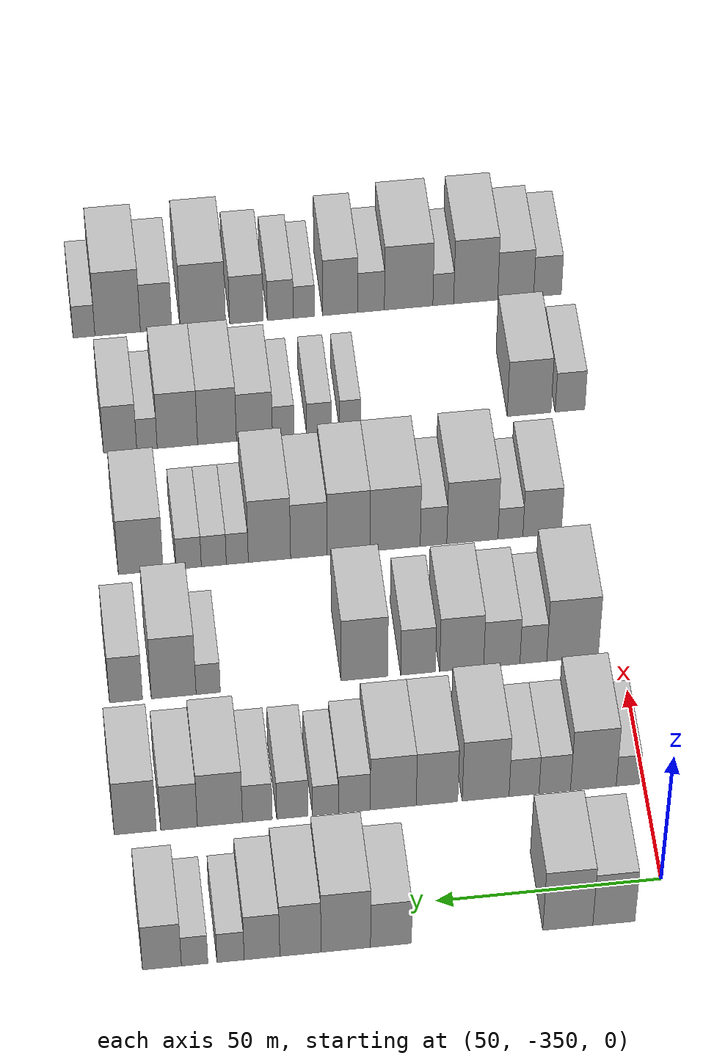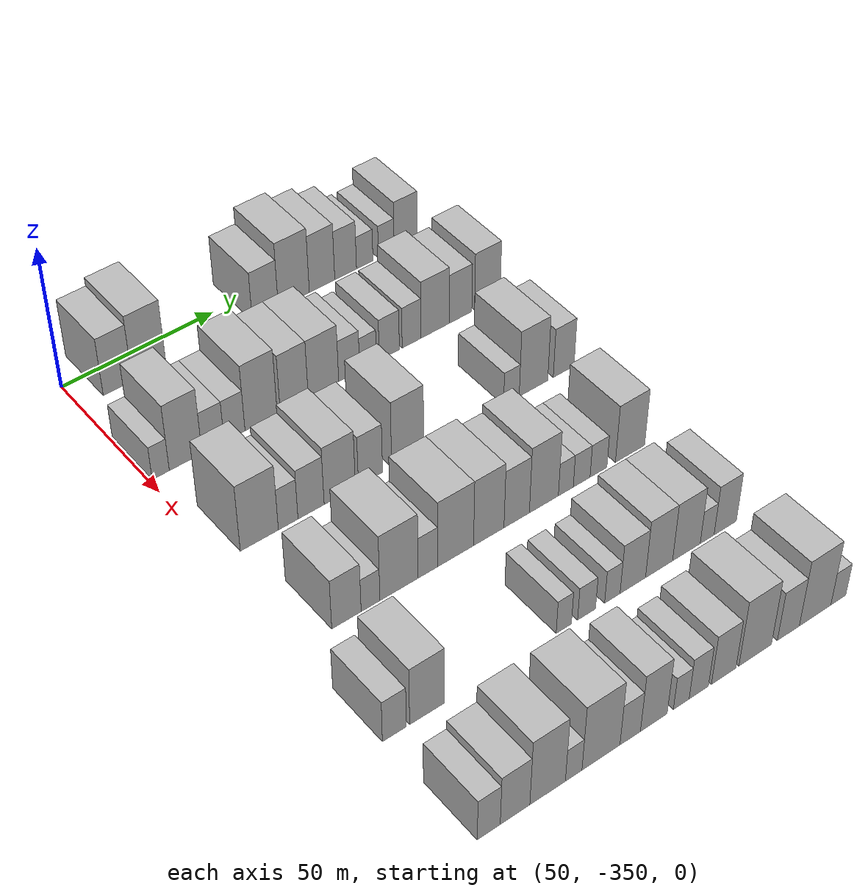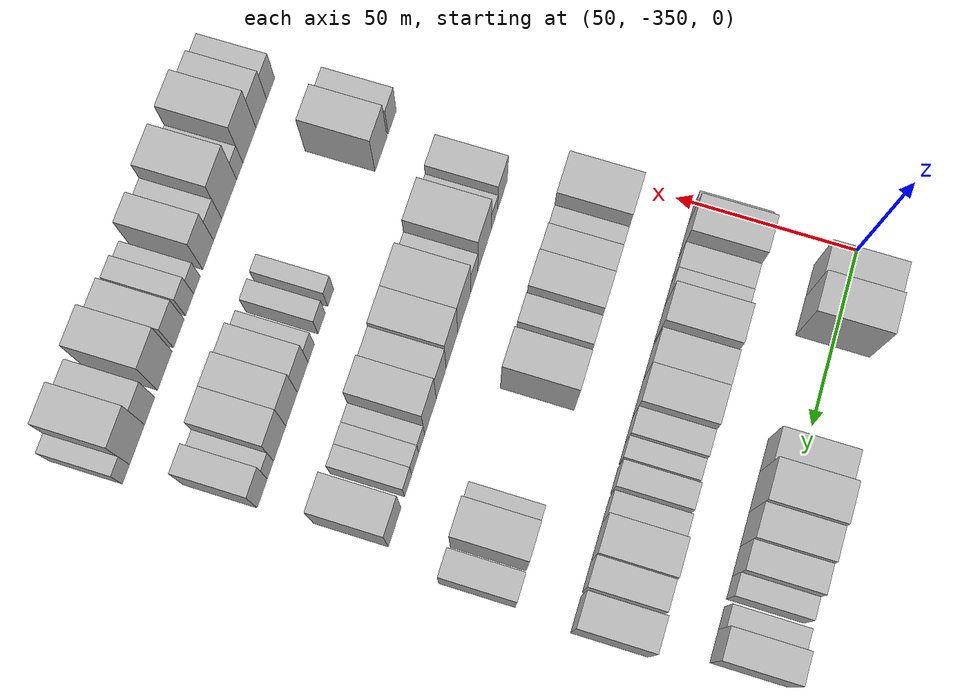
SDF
<sdf version="1.6">
 <world name="default">
  <model name="building_26">
   <static>1</static>
   <pose>50.0000 -337.9815 0 0.000000 0.000000 0.000000</pose>
   <link name="link">
    <pose>0 0 10.50 0 0 0</pose>
    <collision name="collision"><geometry><box><size>20.0000 9.3217 21.0000</size></box></geometry></collision>
    <visual name="visual">
     <cast_shadows>0</cast_shadows>
     <geometry><box><size>20.0000 9.3217 21.0000</size></box></geometry>
     <material>
      <script>
       <uri>model://HANNAS_wall/materials/scripts</uri>
       <uri>model://HANNAS_wall/materials/textures</uri>
       <name>vrc/HANNAS_wall</name>
      </script>
     </material>
    </visual>
   </link>
  </model>
  <model name="building_27">
   <static>1</static>
   <pose>50.0000 -327.7994 0 0.000000 0.000000 0.000000</pose>
   <link name="link">
    <pose>0 0 12.00 0 0 0</pose>
    <collision name="collision"><geometry><box><size>20.0000 11.0424 24.0000</size></box></geometry></collision>
    <visual name="visual">
     <cast_shadows>0</cast_shadows>
     <geometry><box><size>20.0000 11.0424 24.0000</size></box></geometry>
     <material>
      <script>
       <uri>model://HANNAS_wall/materials/scripts</uri>
       <uri>model://HANNAS_wall/materials/textures</uri>
       <name>vrc/HANNAS_wall</name>
      </script>
     </material>
    </visual>
   </link>
  </model>
  <model name="building_28">
   <static>1</static>
   <pose>50.0000 -288.8033 0 0.000000 0.000000 0.000000</pose>
   <link name="link">
    <pose>0 0 9.00 0 0 0</pose>
    <collision name="collision"><geometry><box><size>20.0000 8.9833 18.0000</size></box></geometry></collision>
    <visual name="visual">
     <cast_shadows>0</cast_shadows>
     <geometry><box><size>20.0000 8.9833 18.0000</size></box></geometry>
     <material>
      <script>
       <uri>model://HANNAS_wall/materials/scripts</uri>
       <uri>model://HANNAS_wall/materials/textures</uri>
       <name>vrc/HANNAS_wall</name>
      </script>
     </material>
    </visual>
   </link>
  </model>
  <model name="building_29">
   <static>1</static>
   <pose>50.0000 -278.8812 0 0.000000 0.000000 0.000000</pose>
   <link name="link">
    <pose>0 0 12.00 0 0 0</pose>
    <collision name="collision"><geometry><box><size>20.0000 10.8609 24.0000</size></box></geometry></collision>
    <visual name="visual">
     <cast_shadows>0</cast_shadows>
     <geometry><box><size>20.0000 10.8609 24.0000</size></box></geometry>
     <material>
      <script>
       <uri>model://HANNAS_wall/materials/scripts</uri>
       <uri>model://HANNAS_wall/materials/textures</uri>
       <name>vrc/HANNAS_wall</name>
      </script>
     </material>
    </visual>
   </link>
  </model>
  <model name="building_30">
   <static>1</static>
   <pose>50.0000 -268.9282 0 0.000000 0.000000 0.000000</pose>
   <link name="link">
    <pose>0 0 10.50 0 0 0</pose>
    <collision name="collision"><geometry><box><size>20.0000 9.0451 21.0000</size></box></geometry></collision>
    <visual name="visual">
     <cast_shadows>0</cast_shadows>
     <geometry><box><size>20.0000 9.0451 21.0000</size></box></geometry>
     <material>
      <script>
       <uri>model://HANNAS_wall/materials/scripts</uri>
       <uri>model://HANNAS_wall/materials/textures</uri>
       <name>vrc/HANNAS_wall</name>
      </script>
     </material>
    </visual>
   </link>
  </model>
  <model name="building_31">
   <static>1</static>
   <pose>50.0000 -260.5038 0 0.000000 0.000000 0.000000</pose>
   <link name="link">
    <pose>0 0 9.00 0 0 0</pose>
    <collision name="collision"><geometry><box><size>20.0000 7.8036 18.0000</size></box></geometry></collision>
    <visual name="visual">
     <cast_shadows>0</cast_shadows>
     <geometry><box><size>20.0000 7.8036 18.0000</size></box></geometry>
     <material>
      <script>
       <uri>model://HANNAS_wall/materials/scripts</uri>
       <uri>model://HANNAS_wall/materials/textures</uri>
       <name>vrc/HANNAS_wall</name>
      </script>
     </material>
    </visual>
   </link>
  </model>
  <model name="building_32">
   <static>1</static>
   <pose>50.0000 -253.6218 0 0.000000 0.000000 0.000000</pose>
   <link name="link">
    <pose>0 0 6.00 0 0 0</pose>
    <collision name="collision"><geometry><box><size>20.0000 5.9604 12.0000</size></box></geometry></collision>
    <visual name="visual">
     <cast_shadows>0</cast_shadows>
     <geometry><box><size>20.0000 5.9604 12.0000</size></box></geometry>
     <material>
      <script>
       <uri>model://HANNAS_wall/materials/scripts</uri>
       <uri>model://HANNAS_wall/materials/textures</uri>
       <name>vrc/HANNAS_wall</name>
      </script>
     </material>
    </visual>
   </link>
  </model>
  <model name="building_33">
   <static>1</static>
   <pose>50.0000 -245.7485 0 0.000000 0.000000 0.000000</pose>
   <link name="link">
    <pose>0 0 6.00 0 0 0</pose>
    <collision name="collision"><geometry><box><size>20.0000 5.7862 12.0000</size></box></geometry></collision>
    <visual name="visual">
     <cast_shadows>0</cast_shadows>
     <geometry><box><size>20.0000 5.7862 12.0000</size></box></geometry>
     <material>
      <script>
       <uri>model://HANNAS_wall/materials/scripts</uri>
       <uri>model://HANNAS_wall/materials/textures</uri>
       <name>vrc/HANNAS_wall</name>
      </script>
     </material>
    </visual>
   </link>
  </model>
  <model name="building_34">
   <static>1</static>
   <pose>50.0000 -238.6031 0 0.000000 0.000000 0.000000</pose>
   <link name="link">
    <pose>0 0 9.00 0 0 0</pose>
    <collision name="collision"><geometry><box><size>20.0000 8.5045 18.0000</size></box></geometry></collision>
    <visual name="visual">
     <cast_shadows>0</cast_shadows>
     <geometry><box><size>20.0000 8.5045 18.0000</size></box></geometry>
     <material>
      <script>
       <uri>model://HANNAS_wall/materials/scripts</uri>
       <uri>model://HANNAS_wall/materials/textures</uri>
       <name>vrc/HANNAS_wall</name>
      </script>
     </material>
    </visual>
   </link>
  </model>
  <model name="building_146">
   <static>1</static>
   <pose>85.0000 -346.3548 0 0.000000 0.000000 0.000000</pose>
   <link name="link">
    <pose>0 0 6.00 0 0 0</pose>
    <collision name="collision"><geometry><box><size>20.0000 5.3492 12.0000</size></box></geometry></collision>
    <visual name="visual">
     <cast_shadows>0</cast_shadows>
     <geometry><box><size>20.0000 5.3492 12.0000</size></box></geometry>
     <material>
      <script>
       <uri>model://HANNAS_wall/materials/scripts</uri>
       <uri>model://HANNAS_wall/materials/textures</uri>
       <name>vrc/HANNAS_wall</name>
      </script>
     </material>
    </visual>
   </link>
  </model>
  <model name="building_147">
   <static>1</static>
   <pose>85.0000 -338.5195 0 0.000000 0.000000 0.000000</pose>
   <link name="link">
    <pose>0 0 12.00 0 0 0</pose>
    <collision name="collision"><geometry><box><size>20.0000 10.3215 24.0000</size></box></geometry></collision>
    <visual name="visual">
     <cast_shadows>0</cast_shadows>
     <geometry><box><size>20.0000 10.3215 24.0000</size></box></geometry>
     <material>
      <script>
       <uri>model://HANNAS_wall/materials/scripts</uri>
       <uri>model://HANNAS_wall/materials/textures</uri>
       <name>vrc/HANNAS_wall</name>
      </script>
     </material>
    </visual>
   </link>
  </model>
  <model name="building_148">
   <static>1</static>
   <pose>85.0000 -329.8063 0 0.000000 0.000000 0.000000</pose>
   <link name="link">
    <pose>0 0 7.50 0 0 0</pose>
    <collision name="collision"><geometry><box><size>20.0000 7.1049 15.0000</size></box></geometry></collision>
    <visual name="visual">
     <cast_shadows>0</cast_shadows>
     <geometry><box><size>20.0000 7.1049 15.0000</size></box></geometry>
     <material>
      <script>
       <uri>model://HANNAS_wall/materials/scripts</uri>
       <uri>model://HANNAS_wall/materials/textures</uri>
       <name>vrc/HANNAS_wall</name>
      </script>
     </material>
    </visual>
   </link>
  </model>
  <model name="building_149">
   <static>1</static>
   <pose>85.0000 -322.8811 0 0.000000 0.000000 0.000000</pose>
   <link name="link">
    <pose>0 0 7.50 0 0 0</pose>
    <collision name="collision"><geometry><box><size>20.0000 6.7456 15.0000</size></box></geometry></collision>
    <visual name="visual">
     <cast_shadows>0</cast_shadows>
     <geometry><box><size>20.0000 6.7456 15.0000</size></box></geometry>
     <material>
      <script>
       <uri>model://HANNAS_wall/materials/scripts</uri>
       <uri>model://HANNAS_wall/materials/textures</uri>
       <name>vrc/HANNAS_wall</name>
      </script>
     </material>
    </visual>
   </link>
  </model>
  <model name="building_150">
   <static>1</static>
   <pose>85.0000 -314.2367 0 0.000000 0.000000 0.000000</pose>
   <link name="link">
    <pose>0 0 12.00 0 0 0</pose>
    <collision name="collision"><geometry><box><size>20.0000 10.5431 24.0000</size></box></geometry></collision>
    <visual name="visual">
     <cast_shadows>0</cast_shadows>
     <geometry><box><size>20.0000 10.5431 24.0000</size></box></geometry>
     <material>
      <script>
       <uri>model://HANNAS_wall/materials/scripts</uri>
       <uri>model://HANNAS_wall/materials/textures</uri>
       <name>vrc/HANNAS_wall</name>
      </script>
     </material>
    </visual>
   </link>
  </model>
  <model name="building_151">
   <static>1</static>
   <pose>85.0000 -303.3021 0 0.000000 0.000000 0.000000</pose>
   <link name="link">
    <pose>0 0 10.50 0 0 0</pose>
    <collision name="collision"><geometry><box><size>20.0000 9.3261 21.0000</size></box></geometry></collision>
    <visual name="visual">
     <cast_shadows>0</cast_shadows>
     <geometry><box><size>20.0000 9.3261 21.0000</size></box></geometry>
     <material>
      <script>
       <uri>model://HANNAS_wall/materials/scripts</uri>
       <uri>model://HANNAS_wall/materials/textures</uri>
       <name>vrc/HANNAS_wall</name>
      </script>
     </material>
    </visual>
   </link>
  </model>
  <model name="building_152">
   <static>1</static>
   <pose>85.0000 -293.4891 0 0.000000 0.000000 0.000000</pose>
   <link name="link">
    <pose>0 0 10.50 0 0 0</pose>
    <collision name="collision"><geometry><box><size>20.0000 10.2998 21.0000</size></box></geometry></collision>
    <visual name="visual">
     <cast_shadows>0</cast_shadows>
     <geometry><box><size>20.0000 10.2998 21.0000</size></box></geometry>
     <material>
      <script>
       <uri>model://HANNAS_wall/materials/scripts</uri>
       <uri>model://HANNAS_wall/materials/textures</uri>
       <name>vrc/HANNAS_wall</name>
      </script>
     </material>
    </visual>
   </link>
  </model>
  <model name="building_153">
   <static>1</static>
   <pose>85.0000 -284.7638 0 0.000000 0.000000 0.000000</pose>
   <link name="link">
    <pose>0 0 7.50 0 0 0</pose>
    <collision name="collision"><geometry><box><size>20.0000 7.1509 15.0000</size></box></geometry></collision>
    <visual name="visual">
     <cast_shadows>0</cast_shadows>
     <geometry><box><size>20.0000 7.1509 15.0000</size></box></geometry>
     <material>
      <script>
       <uri>model://HANNAS_wall/materials/scripts</uri>
       <uri>model://HANNAS_wall/materials/textures</uri>
       <name>vrc/HANNAS_wall</name>
      </script>
     </material>
    </visual>
   </link>
  </model>
  <model name="building_154">
   <static>1</static>
   <pose>85.0000 -278.2954 0 0.000000 0.000000 0.000000</pose>
   <link name="link">
    <pose>0 0 6.00 0 0 0</pose>
    <collision name="collision"><geometry><box><size>20.0000 5.7859 12.0000</size></box></geometry></collision>
    <visual name="visual">
     <cast_shadows>0</cast_shadows>
     <geometry><box><size>20.0000 5.7859 12.0000</size></box></geometry>
     <material>
      <script>
       <uri>model://HANNAS_wall/materials/scripts</uri>
       <uri>model://HANNAS_wall/materials/textures</uri>
       <name>vrc/HANNAS_wall</name>
      </script>
     </material>
    </visual>
   </link>
  </model>
  <model name="building_155">
   <static>1</static>
   <pose>85.0000 -270.8939 0 0.000000 0.000000 0.000000</pose>
   <link name="link">
    <pose>0 0 7.50 0 0 0</pose>
    <collision name="collision"><geometry><box><size>20.0000 7.0171 15.0000</size></box></geometry></collision>
    <visual name="visual">
     <cast_shadows>0</cast_shadows>
     <geometry><box><size>20.0000 7.0171 15.0000</size></box></geometry>
     <material>
      <script>
       <uri>model://HANNAS_wall/materials/scripts</uri>
       <uri>model://HANNAS_wall/materials/textures</uri>
       <name>vrc/HANNAS_wall</name>
      </script>
     </material>
    </visual>
   </link>
  </model>
  <model name="building_156">
   <static>1</static>
   <pose>85.0000 -263.0606 0 0.000000 0.000000 0.000000</pose>
   <link name="link">
    <pose>0 0 7.50 0 0 0</pose>
    <collision name="collision"><geometry><box><size>20.0000 6.6496 15.0000</size></box></geometry></collision>
    <visual name="visual">
     <cast_shadows>0</cast_shadows>
     <geometry><box><size>20.0000 6.6496 15.0000</size></box></geometry>
     <material>
      <script>
       <uri>model://HANNAS_wall/materials/scripts</uri>
       <uri>model://HANNAS_wall/materials/textures</uri>
       <name>vrc/HANNAS_wall</name>
      </script>
     </material>
    </visual>
   </link>
  </model>
  <model name="building_157">
   <static>1</static>
   <pose>85.0000 -254.6994 0 0.000000 0.000000 0.000000</pose>
   <link name="link">
    <pose>0 0 10.50 0 0 0</pose>
    <collision name="collision"><geometry><box><size>20.0000 10.0726 21.0000</size></box></geometry></collision>
    <visual name="visual">
     <cast_shadows>0</cast_shadows>
     <geometry><box><size>20.0000 10.0726 21.0000</size></box></geometry>
     <material>
      <script>
       <uri>model://HANNAS_wall/materials/scripts</uri>
       <uri>model://HANNAS_wall/materials/textures</uri>
       <name>vrc/HANNAS_wall</name>
      </script>
     </material>
    </visual>
   </link>
  </model>
  <model name="building_158">
   <static>1</static>
   <pose>85.0000 -245.5696 0 0.000000 0.000000 0.000000</pose>
   <link name="link">
    <pose>0 0 9.00 0 0 0</pose>
    <collision name="collision"><geometry><box><size>20.0000 8.1870 18.0000</size></box></geometry></collision>
    <visual name="visual">
     <cast_shadows>0</cast_shadows>
     <geometry><box><size>20.0000 8.1870 18.0000</size></box></geometry>
     <material>
      <script>
       <uri>model://HANNAS_wall/materials/scripts</uri>
       <uri>model://HANNAS_wall/materials/textures</uri>
       <name>vrc/HANNAS_wall</name>
      </script>
     </material>
    </visual>
   </link>
  </model>
  <model name="building_159">
   <static>1</static>
   <pose>85.0000 -235.7897 0 0.000000 0.000000 0.000000</pose>
   <link name="link">
    <pose>0 0 10.50 0 0 0</pose>
    <collision name="collision"><geometry><box><size>20.0000 9.3730 21.0000</size></box></geometry></collision>
    <visual name="visual">
     <cast_shadows>0</cast_shadows>
     <geometry><box><size>20.0000 9.3730 21.0000</size></box></geometry>
     <material>
      <script>
       <uri>model://HANNAS_wall/materials/scripts</uri>
       <uri>model://HANNAS_wall/materials/textures</uri>
       <name>vrc/HANNAS_wall</name>
      </script>
     </material>
    </visual>
   </link>
  </model>
  <model name="building_274">
   <static>1</static>
   <pose>120.0000 -338.7851 0 0.000000 0.000000 0.000000</pose>
   <link name="link">
    <pose>0 0 12.00 0 0 0</pose>
    <collision name="collision"><geometry><box><size>20.0000 11.8301 24.0000</size></box></geometry></collision>
    <visual name="visual">
     <cast_shadows>0</cast_shadows>
     <geometry><box><size>20.0000 11.8301 24.0000</size></box></geometry>
     <material>
      <script>
       <uri>model://HANNAS_wall/materials/scripts</uri>
       <uri>model://HANNAS_wall/materials/textures</uri>
       <name>vrc/HANNAS_wall</name>
      </script>
     </material>
    </visual>
   </link>
  </model>
  <model name="building_275">
   <static>1</static>
   <pose>120.0000 -329.7839 0 0.000000 0.000000 0.000000</pose>
   <link name="link">
    <pose>0 0 7.50 0 0 0</pose>
    <collision name="collision"><geometry><box><size>20.0000 6.1723 15.0000</size></box></geometry></collision>
    <visual name="visual">
     <cast_shadows>0</cast_shadows>
     <geometry><box><size>20.0000 6.1723 15.0000</size></box></geometry>
     <material>
      <script>
       <uri>model://HANNAS_wall/materials/scripts</uri>
       <uri>model://HANNAS_wall/materials/textures</uri>
       <name>vrc/HANNAS_wall</name>
      </script>
     </material>
    </visual>
   </link>
  </model>
  <model name="building_276">
   <static>1</static>
   <pose>120.0000 -322.5270 0 0.000000 0.000000 0.000000</pose>
   <link name="link">
    <pose>0 0 9.00 0 0 0</pose>
    <collision name="collision"><geometry><box><size>20.0000 8.3417 18.0000</size></box></geometry></collision>
    <visual name="visual">
     <cast_shadows>0</cast_shadows>
     <geometry><box><size>20.0000 8.3417 18.0000</size></box></geometry>
     <material>
      <script>
       <uri>model://HANNAS_wall/materials/scripts</uri>
       <uri>model://HANNAS_wall/materials/textures</uri>
       <name>vrc/HANNAS_wall</name>
      </script>
     </material>
    </visual>
   </link>
  </model>
  <model name="building_277">
   <static>1</static>
   <pose>120.0000 -313.3157 0 0.000000 0.000000 0.000000</pose>
   <link name="link">
    <pose>0 0 10.50 0 0 0</pose>
    <collision name="collision"><geometry><box><size>20.0000 10.0809 21.0000</size></box></geometry></collision>
    <visual name="visual">
     <cast_shadows>0</cast_shadows>
     <geometry><box><size>20.0000 10.0809 21.0000</size></box></geometry>
     <material>
      <script>
       <uri>model://HANNAS_wall/materials/scripts</uri>
       <uri>model://HANNAS_wall/materials/textures</uri>
       <name>vrc/HANNAS_wall</name>
      </script>
     </material>
    </visual>
   </link>
  </model>
  <model name="building_278">
   <static>1</static>
   <pose>120.0000 -303.3195 0 0.000000 0.000000 0.000000</pose>
   <link name="link">
    <pose>0 0 9.00 0 0 0</pose>
    <collision name="collision"><geometry><box><size>20.0000 7.9114 18.0000</size></box></geometry></collision>
    <visual name="visual">
     <cast_shadows>0</cast_shadows>
     <geometry><box><size>20.0000 7.9114 18.0000</size></box></geometry>
     <material>
      <script>
       <uri>model://HANNAS_wall/materials/scripts</uri>
       <uri>model://HANNAS_wall/materials/textures</uri>
       <name>vrc/HANNAS_wall</name>
      </script>
     </material>
    </visual>
   </link>
  </model>
  <model name="building_279">
   <static>1</static>
   <pose>120.0000 -291.0245 0 0.000000 0.000000 0.000000</pose>
   <link name="link">
    <pose>0 0 12.00 0 0 0</pose>
    <collision name="collision"><geometry><box><size>20.0000 10.6787 24.0000</size></box></geometry></collision>
    <visual name="visual">
     <cast_shadows>0</cast_shadows>
     <geometry><box><size>20.0000 10.6787 24.0000</size></box></geometry>
     <material>
      <script>
       <uri>model://HANNAS_wall/materials/scripts</uri>
       <uri>model://HANNAS_wall/materials/textures</uri>
       <name>vrc/HANNAS_wall</name>
      </script>
     </material>
    </visual>
   </link>
  </model>
  <model name="building_280">
   <static>1</static>
   <pose>120.0000 -255.4131 0 0.000000 0.000000 0.000000</pose>
   <link name="link">
    <pose>0 0 6.00 0 0 0</pose>
    <collision name="collision"><geometry><box><size>20.0000 5.5147 12.0000</size></box></geometry></collision>
    <visual name="visual">
     <cast_shadows>0</cast_shadows>
     <geometry><box><size>20.0000 5.5147 12.0000</size></box></geometry>
     <material>
      <script>
       <uri>model://HANNAS_wall/materials/scripts</uri>
       <uri>model://HANNAS_wall/materials/textures</uri>
       <name>vrc/HANNAS_wall</name>
      </script>
     </material>
    </visual>
   </link>
  </model>
  <model name="building_281">
   <static>1</static>
   <pose>120.0000 -247.5653 0 0.000000 0.000000 0.000000</pose>
   <link name="link">
    <pose>0 0 12.00 0 0 0</pose>
    <collision name="collision"><geometry><box><size>20.0000 10.1808 24.0000</size></box></geometry></collision>
    <visual name="visual">
     <cast_shadows>0</cast_shadows>
     <geometry><box><size>20.0000 10.1808 24.0000</size></box></geometry>
     <material>
      <script>
       <uri>model://HANNAS_wall/materials/scripts</uri>
       <uri>model://HANNAS_wall/materials/textures</uri>
       <name>vrc/HANNAS_wall</name>
      </script>
     </material>
    </visual>
   </link>
  </model>
  <model name="building_282">
   <static>1</static>
   <pose>120.0000 -236.7240 0 0.000000 0.000000 0.000000</pose>
   <link name="link">
    <pose>0 0 9.00 0 0 0</pose>
    <collision name="collision"><geometry><box><size>20.0000 7.5017 18.0000</size></box></geometry></collision>
    <visual name="visual">
     <cast_shadows>0</cast_shadows>
     <geometry><box><size>20.0000 7.5017 18.0000</size></box></geometry>
     <material>
      <script>
       <uri>model://HANNAS_wall/materials/scripts</uri>
       <uri>model://HANNAS_wall/materials/textures</uri>
       <name>vrc/HANNAS_wall</name>
      </script>
     </material>
    </visual>
   </link>
  </model>
  <model name="building_393">
   <static>1</static>
   <pose>155.0000 -336.6361 0 0.000000 0.000000 0.000000</pose>
   <link name="link">
    <pose>0 0 9.00 0 0 0</pose>
    <collision name="collision"><geometry><box><size>20.0000 8.9977 18.0000</size></box></geometry></collision>
    <visual name="visual">
     <cast_shadows>0</cast_shadows>
     <geometry><box><size>20.0000 8.9977 18.0000</size></box></geometry>
     <material>
      <script>
       <uri>model://HANNAS_wall/materials/scripts</uri>
       <uri>model://HANNAS_wall/materials/textures</uri>
       <name>vrc/HANNAS_wall</name>
      </script>
     </material>
    </visual>
   </link>
  </model>
  <model name="building_394">
   <static>1</static>
   <pose>155.0000 -329.2235 0 0.000000 0.000000 0.000000</pose>
   <link name="link">
    <pose>0 0 6.00 0 0 0</pose>
    <collision name="collision"><geometry><box><size>20.0000 5.8275 12.0000</size></box></geometry></collision>
    <visual name="visual">
     <cast_shadows>0</cast_shadows>
     <geometry><box><size>20.0000 5.8275 12.0000</size></box></geometry>
     <material>
      <script>
       <uri>model://HANNAS_wall/materials/scripts</uri>
       <uri>model://HANNAS_wall/materials/textures</uri>
       <name>vrc/HANNAS_wall</name>
      </script>
     </material>
    </visual>
   </link>
  </model>
  <model name="building_395">
   <static>1</static>
   <pose>155.0000 -320.3231 0 0.000000 0.000000 0.000000</pose>
   <link name="link">
    <pose>0 0 12.00 0 0 0</pose>
    <collision name="collision"><geometry><box><size>20.0000 11.9733 24.0000</size></box></geometry></collision>
    <visual name="visual">
     <cast_shadows>0</cast_shadows>
     <geometry><box><size>20.0000 11.9733 24.0000</size></box></geometry>
     <material>
      <script>
       <uri>model://HANNAS_wall/materials/scripts</uri>
       <uri>model://HANNAS_wall/materials/textures</uri>
       <name>vrc/HANNAS_wall</name>
      </script>
     </material>
    </visual>
   </link>
  </model>
  <model name="building_396">
   <static>1</static>
   <pose>155.0000 -311.2352 0 0.000000 0.000000 0.000000</pose>
   <link name="link">
    <pose>0 0 7.50 0 0 0</pose>
    <collision name="collision"><geometry><box><size>20.0000 6.2024 15.0000</size></box></geometry></collision>
    <visual name="visual">
     <cast_shadows>0</cast_shadows>
     <geometry><box><size>20.0000 6.2024 15.0000</size></box></geometry>
     <material>
      <script>
       <uri>model://HANNAS_wall/materials/scripts</uri>
       <uri>model://HANNAS_wall/materials/textures</uri>
       <name>vrc/HANNAS_wall</name>
      </script>
     </material>
    </visual>
   </link>
  </model>
  <model name="building_397">
   <static>1</static>
   <pose>155.0000 -302.2857 0 0.000000 0.000000 0.000000</pose>
   <link name="link">
    <pose>0 0 12.00 0 0 0</pose>
    <collision name="collision"><geometry><box><size>20.0000 11.6965 24.0000</size></box></geometry></collision>
    <visual name="visual">
     <cast_shadows>0</cast_shadows>
     <geometry><box><size>20.0000 11.6965 24.0000</size></box></geometry>
     <material>
      <script>
       <uri>model://HANNAS_wall/materials/scripts</uri>
       <uri>model://HANNAS_wall/materials/textures</uri>
       <name>vrc/HANNAS_wall</name>
      </script>
     </material>
    </visual>
   </link>
  </model>
  <model name="building_398">
   <static>1</static>
   <pose>155.0000 -291.4302 0 0.000000 0.000000 0.000000</pose>
   <link name="link">
    <pose>0 0 12.00 0 0 0</pose>
    <collision name="collision"><geometry><box><size>20.0000 10.0145 24.0000</size></box></geometry></collision>
    <visual name="visual">
     <cast_shadows>0</cast_shadows>
     <geometry><box><size>20.0000 10.0145 24.0000</size></box></geometry>
     <material>
      <script>
       <uri>model://HANNAS_wall/materials/scripts</uri>
       <uri>model://HANNAS_wall/materials/textures</uri>
       <name>vrc/HANNAS_wall</name>
      </script>
     </material>
    </visual>
   </link>
  </model>
  <model name="building_399">
   <static>1</static>
   <pose>155.0000 -282.1721 0 0.000000 0.000000 0.000000</pose>
   <link name="link">
    <pose>0 0 10.50 0 0 0</pose>
    <collision name="collision"><geometry><box><size>20.0000 8.5016 21.0000</size></box></geometry></collision>
    <visual name="visual">
     <cast_shadows>0</cast_shadows>
     <geometry><box><size>20.0000 8.5016 21.0000</size></box></geometry>
     <material>
      <script>
       <uri>model://HANNAS_wall/materials/scripts</uri>
       <uri>model://HANNAS_wall/materials/textures</uri>
       <name>vrc/HANNAS_wall</name>
      </script>
     </material>
    </visual>
   </link>
  </model>
  <model name="building_400">
   <static>1</static>
   <pose>155.0000 -273.0039 0 0.000000 0.000000 0.000000</pose>
   <link name="link">
    <pose>0 0 12.00 0 0 0</pose>
    <collision name="collision"><geometry><box><size>20.0000 9.8349 24.0000</size></box></geometry></collision>
    <visual name="visual">
     <cast_shadows>0</cast_shadows>
     <geometry><box><size>20.0000 9.8349 24.0000</size></box></geometry>
     <material>
      <script>
       <uri>model://HANNAS_wall/materials/scripts</uri>
       <uri>model://HANNAS_wall/materials/textures</uri>
       <name>vrc/HANNAS_wall</name>
      </script>
     </material>
    </visual>
   </link>
  </model>
  <model name="building_401">
   <static>1</static>
   <pose>155.0000 -265.5289 0 0.000000 0.000000 0.000000</pose>
   <link name="link">
    <pose>0 0 6.00 0 0 0</pose>
    <collision name="collision"><geometry><box><size>20.0000 5.1149 12.0000</size></box></geometry></collision>
    <visual name="visual">
     <cast_shadows>0</cast_shadows>
     <geometry><box><size>20.0000 5.1149 12.0000</size></box></geometry>
     <material>
      <script>
       <uri>model://HANNAS_wall/materials/scripts</uri>
       <uri>model://HANNAS_wall/materials/textures</uri>
       <name>vrc/HANNAS_wall</name>
      </script>
     </material>
    </visual>
   </link>
  </model>
  <model name="building_402">
   <static>1</static>
   <pose>155.0000 -260.0670 0 0.000000 0.000000 0.000000</pose>
   <link name="link">
    <pose>0 0 6.00 0 0 0</pose>
    <collision name="collision"><geometry><box><size>20.0000 5.8090 12.0000</size></box></geometry></collision>
    <visual name="visual">
     <cast_shadows>0</cast_shadows>
     <geometry><box><size>20.0000 5.8090 12.0000</size></box></geometry>
     <material>
      <script>
       <uri>model://HANNAS_wall/materials/scripts</uri>
       <uri>model://HANNAS_wall/materials/textures</uri>
       <name>vrc/HANNAS_wall</name>
      </script>
     </material>
    </visual>
   </link>
  </model>
  <model name="building_403">
   <static>1</static>
   <pose>155.0000 -254.2226 0 0.000000 0.000000 0.000000</pose>
   <link name="link">
    <pose>0 0 6.00 0 0 0</pose>
    <collision name="collision"><geometry><box><size>20.0000 5.8796 12.0000</size></box></geometry></collision>
    <visual name="visual">
     <cast_shadows>0</cast_shadows>
     <geometry><box><size>20.0000 5.8796 12.0000</size></box></geometry>
     <material>
      <script>
       <uri>model://HANNAS_wall/materials/scripts</uri>
       <uri>model://HANNAS_wall/materials/textures</uri>
       <name>vrc/HANNAS_wall</name>
      </script>
     </material>
    </visual>
   </link>
  </model>
  <model name="building_404">
   <static>1</static>
   <pose>155.0000 -243.1064 0 0.000000 0.000000 0.000000</pose>
   <link name="link">
    <pose>0 0 10.50 0 0 0</pose>
    <collision name="collision"><geometry><box><size>20.0000 10.3527 21.0000</size></box></geometry></collision>
    <visual name="visual">
     <cast_shadows>0</cast_shadows>
     <geometry><box><size>20.0000 10.3527 21.0000</size></box></geometry>
     <material>
      <script>
       <uri>model://HANNAS_wall/materials/scripts</uri>
       <uri>model://HANNAS_wall/materials/textures</uri>
       <name>vrc/HANNAS_wall</name>
      </script>
     </material>
    </visual>
   </link>
  </model>
  <model name="building_525">
   <static>1</static>
   <pose>190.0000 -348.1382 0 0.000000 0.000000 0.000000</pose>
   <link name="link">
    <pose>0 0 7.50 0 0 0</pose>
    <collision name="collision"><geometry><box><size>20.0000 7.0594 15.0000</size></box></geometry></collision>
    <visual name="visual">
     <cast_shadows>0</cast_shadows>
     <geometry><box><size>20.0000 7.0594 15.0000</size></box></geometry>
     <material>
      <script>
       <uri>model://HANNAS_wall/materials/scripts</uri>
       <uri>model://HANNAS_wall/materials/textures</uri>
       <name>vrc/HANNAS_wall</name>
      </script>
     </material>
    </visual>
   </link>
  </model>
  <model name="building_526">
   <static>1</static>
   <pose>190.0000 -338.3850 0 0.000000 0.000000 0.000000</pose>
   <link name="link">
    <pose>0 0 10.50 0 0 0</pose>
    <collision name="collision"><geometry><box><size>20.0000 10.4470 21.0000</size></box></geometry></collision>
    <visual name="visual">
     <cast_shadows>0</cast_shadows>
     <geometry><box><size>20.0000 10.4470 21.0000</size></box></geometry>
     <material>
      <script>
       <uri>model://HANNAS_wall/materials/scripts</uri>
       <uri>model://HANNAS_wall/materials/textures</uri>
       <name>vrc/HANNAS_wall</name>
      </script>
     </material>
    </visual>
   </link>
  </model>
  <model name="building_527">
   <static>1</static>
   <pose>190.0000 -295.7662 0 0.000000 0.000000 0.000000</pose>
   <link name="link">
    <pose>0 0 6.00 0 0 0</pose>
    <collision name="collision"><geometry><box><size>20.0000 4.9302 12.0000</size></box></geometry></collision>
    <visual name="visual">
     <cast_shadows>0</cast_shadows>
     <geometry><box><size>20.0000 4.9302 12.0000</size></box></geometry>
     <material>
      <script>
       <uri>model://HANNAS_wall/materials/scripts</uri>
       <uri>model://HANNAS_wall/materials/textures</uri>
       <name>vrc/HANNAS_wall</name>
      </script>
     </material>
    </visual>
   </link>
  </model>
  <model name="building_528">
   <static>1</static>
   <pose>190.0000 -288.3762 0 0.000000 0.000000 0.000000</pose>
   <link name="link">
    <pose>0 0 6.00 0 0 0</pose>
    <collision name="collision"><geometry><box><size>20.0000 5.8498 12.0000</size></box></geometry></collision>
    <visual name="visual">
     <cast_shadows>0</cast_shadows>
     <geometry><box><size>20.0000 5.8498 12.0000</size></box></geometry>
     <material>
      <script>
       <uri>model://HANNAS_wall/materials/scripts</uri>
       <uri>model://HANNAS_wall/materials/textures</uri>
       <name>vrc/HANNAS_wall</name>
      </script>
     </material>
    </visual>
   </link>
  </model>
  <model name="building_529">
   <static>1</static>
   <pose>190.0000 -279.8938 0 0.000000 0.000000 0.000000</pose>
   <link name="link">
    <pose>0 0 6.00 0 0 0</pose>
    <collision name="collision"><geometry><box><size>20.0000 5.1149 12.0000</size></box></geometry></collision>
    <visual name="visual">
     <cast_shadows>0</cast_shadows>
     <geometry><box><size>20.0000 5.1149 12.0000</size></box></geometry>
     <material>
      <script>
       <uri>model://HANNAS_wall/materials/scripts</uri>
       <uri>model://HANNAS_wall/materials/textures</uri>
       <name>vrc/HANNAS_wall</name>
      </script>
     </material>
    </visual>
   </link>
  </model>
  <model name="building_530">
   <static>1</static>
   <pose>190.0000 -273.0694 0 0.000000 0.000000 0.000000</pose>
   <link name="link">
    <pose>0 0 9.00 0 0 0</pose>
    <collision name="collision"><geometry><box><size>20.0000 8.5339 18.0000</size></box></geometry></collision>
    <visual name="visual">
     <cast_shadows>0</cast_shadows>
     <geometry><box><size>20.0000 8.5339 18.0000</size></box></geometry>
     <material>
      <script>
       <uri>model://HANNAS_wall/materials/scripts</uri>
       <uri>model://HANNAS_wall/materials/textures</uri>
       <name>vrc/HANNAS_wall</name>
      </script>
     </material>
    </visual>
   </link>
  </model>
  <model name="building_531">
   <static>1</static>
   <pose>190.0000 -264.2099 0 0.000000 0.000000 0.000000</pose>
   <link name="link">
    <pose>0 0 10.50 0 0 0</pose>
    <collision name="collision"><geometry><box><size>20.0000 9.1850 21.0000</size></box></geometry></collision>
    <visual name="visual">
     <cast_shadows>0</cast_shadows>
     <geometry><box><size>20.0000 9.1850 21.0000</size></box></geometry>
     <material>
      <script>
       <uri>model://HANNAS_wall/materials/scripts</uri>
       <uri>model://HANNAS_wall/materials/textures</uri>
       <name>vrc/HANNAS_wall</name>
      </script>
     </material>
    </visual>
   </link>
  </model>
  <model name="building_532">
   <static>1</static>
   <pose>190.0000 -254.8404 0 0.000000 0.000000 0.000000</pose>
   <link name="link">
    <pose>0 0 10.50 0 0 0</pose>
    <collision name="collision"><geometry><box><size>20.0000 9.5540 21.0000</size></box></geometry></collision>
    <visual name="visual">
     <cast_shadows>0</cast_shadows>
     <geometry><box><size>20.0000 9.5540 21.0000</size></box></geometry>
     <material>
      <script>
       <uri>model://HANNAS_wall/materials/scripts</uri>
       <uri>model://HANNAS_wall/materials/textures</uri>
       <name>vrc/HANNAS_wall</name>
      </script>
     </material>
    </visual>
   </link>
  </model>
  <model name="building_533">
   <static>1</static>
   <pose>190.0000 -247.6473 0 0.000000 0.000000 0.000000</pose>
   <link name="link">
    <pose>0 0 6.00 0 0 0</pose>
    <collision name="collision"><geometry><box><size>20.0000 4.8322 12.0000</size></box></geometry></collision>
    <visual name="visual">
     <cast_shadows>0</cast_shadows>
     <geometry><box><size>20.0000 4.8322 12.0000</size></box></geometry>
     <material>
      <script>
       <uri>model://HANNAS_wall/materials/scripts</uri>
       <uri>model://HANNAS_wall/materials/textures</uri>
       <name>vrc/HANNAS_wall</name>
      </script>
     </material>
    </visual>
   </link>
  </model>
  <model name="building_534">
   <static>1</static>
   <pose>190.0000 -241.3086 0 0.000000 0.000000 0.000000</pose>
   <link name="link">
    <pose>0 0 9.00 0 0 0</pose>
    <collision name="collision"><geometry><box><size>20.0000 7.8452 18.0000</size></box></geometry></collision>
    <visual name="visual">
     <cast_shadows>0</cast_shadows>
     <geometry><box><size>20.0000 7.8452 18.0000</size></box></geometry>
     <material>
      <script>
       <uri>model://HANNAS_wall/materials/scripts</uri>
       <uri>model://HANNAS_wall/materials/textures</uri>
       <name>vrc/HANNAS_wall</name>
      </script>
     </material>
    </visual>
   </link>
  </model>
  <model name="building_656">
   <static>1</static>
   <pose>225.0000 -347.6272 0 0.000000 0.000000 0.000000</pose>
   <link name="link">
    <pose>0 0 7.50 0 0 0</pose>
    <collision name="collision"><geometry><box><size>20.0000 6.7262 15.0000</size></box></geometry></collision>
    <visual name="visual">
     <cast_shadows>0</cast_shadows>
     <geometry><box><size>20.0000 6.7262 15.0000</size></box></geometry>
     <material>
      <script>
       <uri>model://HANNAS_wall/materials/scripts</uri>
       <uri>model://HANNAS_wall/materials/textures</uri>
       <name>vrc/HANNAS_wall</name>
      </script>
     </material>
    </visual>
   </link>
  </model>
  <model name="building_657">
   <static>1</static>
   <pose>225.0000 -339.8905 0 0.000000 0.000000 0.000000</pose>
   <link name="link">
    <pose>0 0 9.00 0 0 0</pose>
    <collision name="collision"><geometry><box><size>20.0000 8.7471 18.0000</size></box></geometry></collision>
    <visual name="visual">
     <cast_shadows>0</cast_shadows>
     <geometry><box><size>20.0000 8.7471 18.0000</size></box></geometry>
     <material>
      <script>
       <uri>model://HANNAS_wall/materials/scripts</uri>
       <uri>model://HANNAS_wall/materials/textures</uri>
       <name>vrc/HANNAS_wall</name>
      </script>
     </material>
    </visual>
   </link>
  </model>
  <model name="building_658">
   <static>1</static>
   <pose>225.0000 -330.1733 0 0.000000 0.000000 0.000000</pose>
   <link name="link">
    <pose>0 0 12.00 0 0 0</pose>
    <collision name="collision"><geometry><box><size>20.0000 10.6873 24.0000</size></box></geometry></collision>
    <visual name="visual">
     <cast_shadows>0</cast_shadows>
     <geometry><box><size>20.0000 10.6873 24.0000</size></box></geometry>
     <material>
      <script>
       <uri>model://HANNAS_wall/materials/scripts</uri>
       <uri>model://HANNAS_wall/materials/textures</uri>
       <name>vrc/HANNAS_wall</name>
      </script>
     </material>
    </visual>
   </link>
  </model>
  <model name="building_659">
   <static>1</static>
   <pose>225.0000 -322.3084 0 0.000000 0.000000 0.000000</pose>
   <link name="link">
    <pose>0 0 6.00 0 0 0</pose>
    <collision name="collision"><geometry><box><size>20.0000 5.0425 12.0000</size></box></geometry></collision>
    <visual name="visual">
     <cast_shadows>0</cast_shadows>
     <geometry><box><size>20.0000 5.0425 12.0000</size></box></geometry>
     <material>
      <script>
       <uri>model://HANNAS_wall/materials/scripts</uri>
       <uri>model://HANNAS_wall/materials/textures</uri>
       <name>vrc/HANNAS_wall</name>
      </script>
     </material>
    </visual>
   </link>
  </model>
  <model name="building_660">
   <static>1</static>
   <pose>225.0000 -313.9140 0 0.000000 0.000000 0.000000</pose>
   <link name="link">
    <pose>0 0 12.00 0 0 0</pose>
    <collision name="collision"><geometry><box><size>20.0000 11.7463 24.0000</size></box></geometry></collision>
    <visual name="visual">
     <cast_shadows>0</cast_shadows>
     <geometry><box><size>20.0000 11.7463 24.0000</size></box></geometry>
     <material>
      <script>
       <uri>model://HANNAS_wall/materials/scripts</uri>
       <uri>model://HANNAS_wall/materials/textures</uri>
       <name>vrc/HANNAS_wall</name>
      </script>
     </material>
    </visual>
   </link>
  </model>
  <model name="building_661">
   <static>1</static>
   <pose>225.0000 -304.8226 0 0.000000 0.000000 0.000000</pose>
   <link name="link">
    <pose>0 0 7.50 0 0 0</pose>
    <collision name="collision"><geometry><box><size>20.0000 6.4366 15.0000</size></box></geometry></collision>
    <visual name="visual">
     <cast_shadows>0</cast_shadows>
     <geometry><box><size>20.0000 6.4366 15.0000</size></box></geometry>
     <material>
      <script>
       <uri>model://HANNAS_wall/materials/scripts</uri>
       <uri>model://HANNAS_wall/materials/textures</uri>
       <name>vrc/HANNAS_wall</name>
      </script>
     </material>
    </visual>
   </link>
  </model>
  <model name="building_662">
   <static>1</static>
   <pose>225.0000 -297.3572 0 0.000000 0.000000 0.000000</pose>
   <link name="link">
    <pose>0 0 10.50 0 0 0</pose>
    <collision name="collision"><geometry><box><size>20.0000 8.4941 21.0000</size></box></geometry></collision>
    <visual name="visual">
     <cast_shadows>0</cast_shadows>
     <geometry><box><size>20.0000 8.4941 21.0000</size></box></geometry>
     <material>
      <script>
       <uri>model://HANNAS_wall/materials/scripts</uri>
       <uri>model://HANNAS_wall/materials/textures</uri>
       <name>vrc/HANNAS_wall</name>
      </script>
     </material>
    </visual>
   </link>
  </model>
  <model name="building_663">
   <static>1</static>
   <pose>225.0000 -288.5642 0 0.000000 0.000000 0.000000</pose>
   <link name="link">
    <pose>0 0 6.00 0 0 0</pose>
    <collision name="collision"><geometry><box><size>20.0000 5.0920 12.0000</size></box></geometry></collision>
    <visual name="visual">
     <cast_shadows>0</cast_shadows>
     <geometry><box><size>20.0000 5.0920 12.0000</size></box></geometry>
     <material>
      <script>
       <uri>model://HANNAS_wall/materials/scripts</uri>
       <uri>model://HANNAS_wall/materials/textures</uri>
       <name>vrc/HANNAS_wall</name>
      </script>
     </material>
    </visual>
   </link>
  </model>
  <model name="building_664">
   <static>1</static>
   <pose>225.0000 -282.8839 0 0.000000 0.000000 0.000000</pose>
   <link name="link">
    <pose>0 0 7.50 0 0 0</pose>
    <collision name="collision"><geometry><box><size>20.0000 6.2685 15.0000</size></box></geometry></collision>
    <visual name="visual">
     <cast_shadows>0</cast_shadows>
     <geometry><box><size>20.0000 6.2685 15.0000</size></box></geometry>
     <material>
      <script>
       <uri>model://HANNAS_wall/materials/scripts</uri>
       <uri>model://HANNAS_wall/materials/textures</uri>
       <name>vrc/HANNAS_wall</name>
      </script>
     </material>
    </visual>
   </link>
  </model>
  <model name="building_665">
   <static>1</static>
   <pose>225.0000 -274.7019 0 0.000000 0.000000 0.000000</pose>
   <link name="link">
    <pose>0 0 9.00 0 0 0</pose>
    <collision name="collision"><geometry><box><size>20.0000 8.0955 18.0000</size></box></geometry></collision>
    <visual name="visual">
     <cast_shadows>0</cast_shadows>
     <geometry><box><size>20.0000 8.0955 18.0000</size></box></geometry>
     <material>
      <script>
       <uri>model://HANNAS_wall/materials/scripts</uri>
       <uri>model://HANNAS_wall/materials/textures</uri>
       <name>vrc/HANNAS_wall</name>
      </script>
     </material>
    </visual>
   </link>
  </model>
  <model name="building_666">
   <static>1</static>
   <pose>225.0000 -264.1764 0 0.000000 0.000000 0.000000</pose>
   <link name="link">
    <pose>0 0 12.00 0 0 0</pose>
    <collision name="collision"><geometry><box><size>20.0000 10.9556 24.0000</size></box></geometry></collision>
    <visual name="visual">
     <cast_shadows>0</cast_shadows>
     <geometry><box><size>20.0000 10.9556 24.0000</size></box></geometry>
     <material>
      <script>
       <uri>model://HANNAS_wall/materials/scripts</uri>
       <uri>model://HANNAS_wall/materials/textures</uri>
       <name>vrc/HANNAS_wall</name>
      </script>
     </material>
    </visual>
   </link>
  </model>
  <model name="building_667">
   <static>1</static>
   <pose>225.0000 -252.9176 0 0.000000 0.000000 0.000000</pose>
   <link name="link">
    <pose>0 0 9.00 0 0 0</pose>
    <collision name="collision"><geometry><box><size>20.0000 7.5620 18.0000</size></box></geometry></collision>
    <visual name="visual">
     <cast_shadows>0</cast_shadows>
     <geometry><box><size>20.0000 7.5620 18.0000</size></box></geometry>
     <material>
      <script>
       <uri>model://HANNAS_wall/materials/scripts</uri>
       <uri>model://HANNAS_wall/materials/textures</uri>
       <name>vrc/HANNAS_wall</name>
      </script>
     </material>
    </visual>
   </link>
  </model>
  <model name="building_668">
   <static>1</static>
   <pose>225.0000 -243.6696 0 0.000000 0.000000 0.000000</pose>
   <link name="link">
    <pose>0 0 12.00 0 0 0</pose>
    <collision name="collision"><geometry><box><size>20.0000 10.9339 24.0000</size></box></geometry></collision>
    <visual name="visual">
     <cast_shadows>0</cast_shadows>
     <geometry><box><size>20.0000 10.9339 24.0000</size></box></geometry>
     <material>
      <script>
       <uri>model://HANNAS_wall/materials/scripts</uri>
       <uri>model://HANNAS_wall/materials/textures</uri>
       <name>vrc/HANNAS_wall</name>
      </script>
     </material>
    </visual>
   </link>
  </model>
  <model name="building_669">
   <static>1</static>
   <pose>225.0000 -235.5816 0 0.000000 0.000000 0.000000</pose>
   <link name="link">
    <pose>0 0 6.00 0 0 0</pose>
    <collision name="collision"><geometry><box><size>20.0000 5.2421 12.0000</size></box></geometry></collision>
    <visual name="visual">
     <cast_shadows>0</cast_shadows>
     <geometry><box><size>20.0000 5.2421 12.0000</size></box></geometry>
     <material>
      <script>
       <uri>model://HANNAS_wall/materials/scripts</uri>
       <uri>model://HANNAS_wall/materials/textures</uri>
       <name>vrc/HANNAS_wall</name>
      </script>
     </material>
    </visual>
   </link>
  </model>
 </world>
</sdf>
